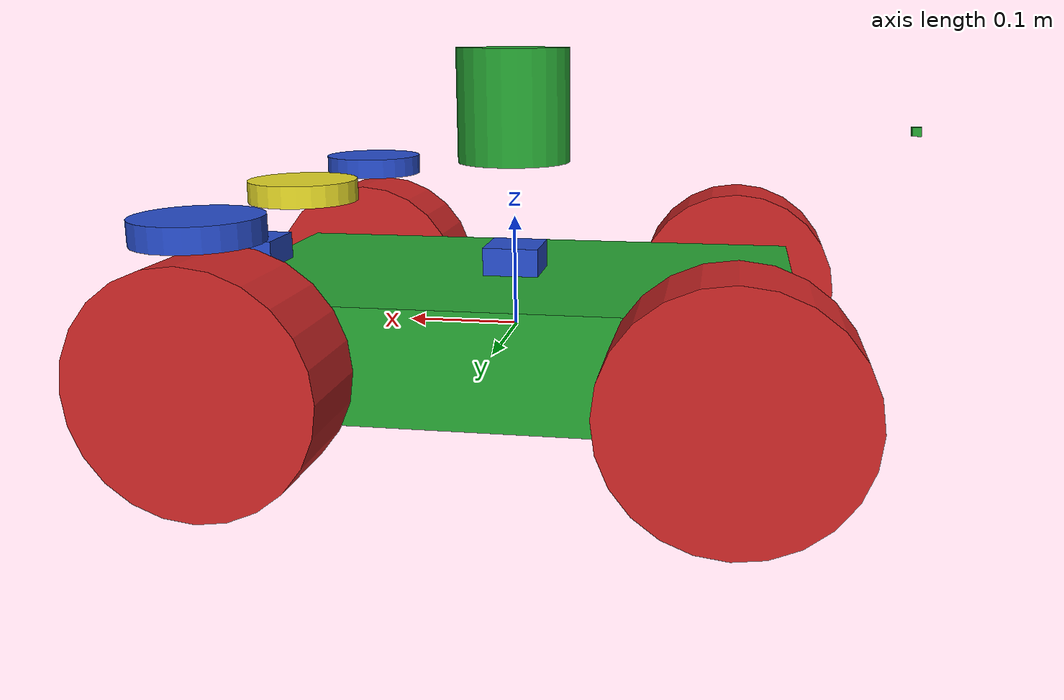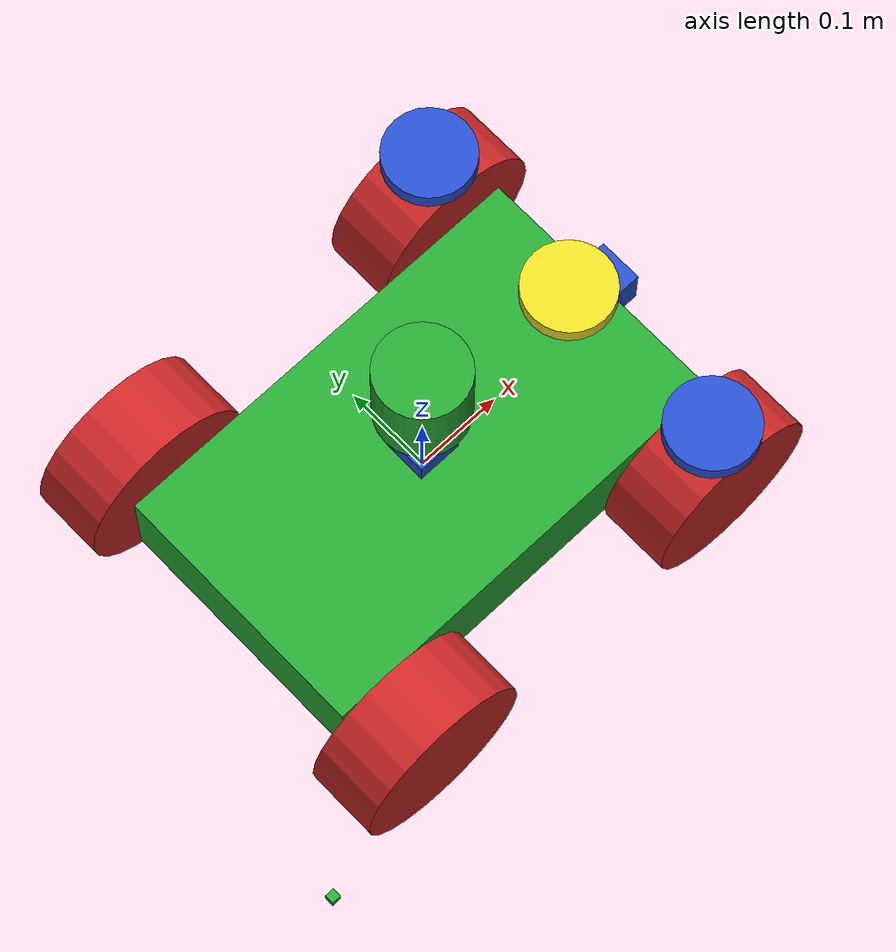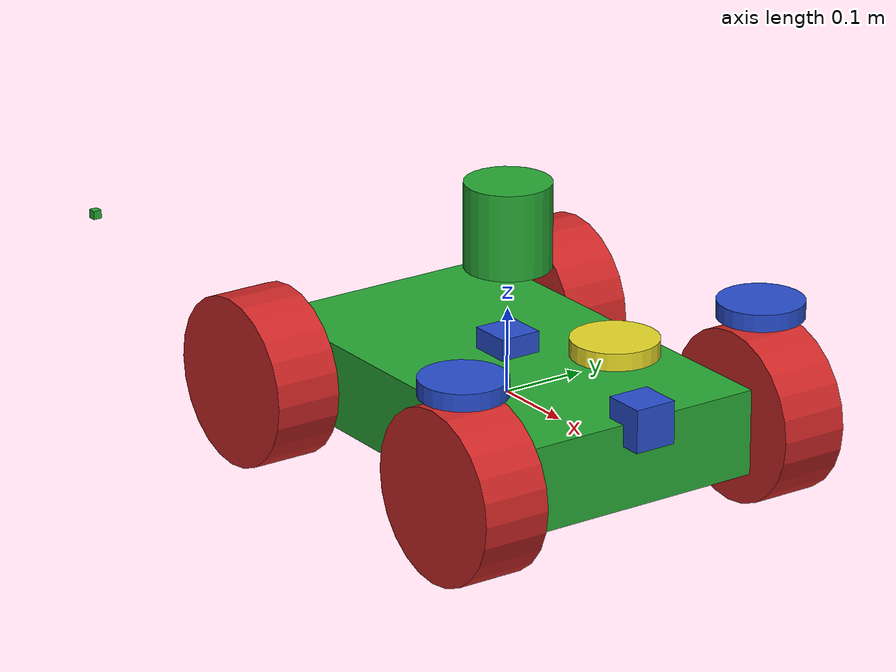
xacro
<?xml version="1.0"?>
<robot name="steer_bot" xmlns:xacro="http://wiki.ros.org/xacro">
  <!-- Include xacro for inertials, materials and wheels -->
  <xacro:include filename="$(find picar_description)/urdf/wheel.xacro"/>

  <xacro:property name="robot_namespace" value="/picar_bot"/>

  <!-- Gazebo plugins -->
  <gazebo>
    <!-- Load ros_control plugin using the steer_bot_hardware_gazebo
         implementation of the hardware_interface::RobotHW -->
    <plugin name="gazebo_ros_control" filename="libgazebo_ros_control.so">
      <robotNamespace>${robot_namespace}</robotNamespace>
      <robotSimType>gazebo_ros_control/DefaultRobotHWSim</robotSimType>
      <legacyModeNS>false</legacyModeNS>
    </plugin>
  </gazebo>

  <!-- Math constants -->
  <xacro:property name="deg_to_rad" value="0.01745329251994329577"/>

  <!-- Robot base dimensions -->
  <xacro:property name="base_length" value="0.5" />
  <xacro:property name="base_width" value="0.3" />
  <xacro:property name="base_height" value="0.1" />
  <xacro:property name="base_mass" value="5" />

  <!-- Wheel link dimensions -->
  <xacro:property name="wheel_radius" value="0.1" />
  <xacro:property name="wheel_thickness" value="0.08" />
  <xacro:property name="wheel_mass" value="1" />

  <!-- Steering link dimensions -->
  <xacro:property name="steer_radius" value="0.05" />
  <xacro:property name="steer_thickness" value="0.02" />
  <xacro:property name="steer_mass" value="1" />

  <!-- Axle positions -->
  <xacro:property name="axle_offset" value="0.05" />
  <xacro:property name="steer_offset" value="0.02" />

  <!-- Base link -->
  <link name="base_link"/>

  <link name="chassis">
    <visual>
      <origin xyz="0 0 0" rpy="0 0 0"/>
      <geometry>
        <box size="${base_length} ${base_width} ${base_height}"/>
      </geometry>
      <material name="green" />
    </visual>
    <collision>
      <origin xyz="0 0 0" rpy="0 0 0"/>
      <geometry>
        <box size="${base_length} ${base_width} ${base_height}"/>
      </geometry>
    </collision>
    <xacro:solid_cuboid_inertial
        rpy="0 0 0" xyz="0 0 0"
        mass="${base_mass}"
        x="${base_length}" y="${base_width}" z="${base_height}" />
  </link>

  <joint name="joint_chassis_to_base_link" type="fixed" >
    <parent link="base_link" />
    <child link="chassis" />
  </joint>

  <!-- Front steer and rear wheel joints required for ackermann_steering_controller -->
  <xacro:front_steer
      name="front"
      parent="base"
      steer_radius="${steer_radius}"
      steer_thickness="${steer_thickness}"
      steer_mass="${steer_mass}"
      base_length="${base_length}"
      base_width="${base_width}"
      axle_offset="${axle_offset}"
      steer_height="${wheel_radius+steer_offset}">
  </xacro:front_steer>

  <xacro:rear_wheel
      name="rear"
      parent="base"
      wheel_radius="${wheel_radius/4}"
      wheel_thickness="${wheel_thickness/2}"
      wheel_mass="${wheel_mass/32}">
    <origin xyz="${-base_length/2+axle_offset} 0 0" rpy="${-90 * deg_to_rad} 0 0"/>
  </xacro:rear_wheel>

  <!-- Steerable front wheels -->
  <xacro:front_wheel_lr
      name="front_right"
      parent="base"
      reflect="-1"
      wheel_radius="${wheel_radius}"
      wheel_thickness="${wheel_thickness}"
      wheel_mass="${wheel_mass}"
      steer_radius="${steer_radius}"
      steer_thickness="${steer_thickness}"
      steer_mass="${steer_mass}"
      base_length="${base_length}"
      base_width="${base_width}"
      axle_offset="${axle_offset}"
      steer_height="${wheel_radius+steer_offset}">
  </xacro:front_wheel_lr>
  <xacro:front_wheel_lr
      name="front_left"
      parent="base"
      reflect="1"
      wheel_radius="${wheel_radius}"
      wheel_thickness="${wheel_thickness}"
      wheel_mass="${wheel_mass}"
      steer_radius="${steer_radius}"
      steer_thickness="${steer_thickness}"
      steer_mass="${steer_mass}"
      base_length="${base_length}"
      base_width="${base_width}"
      axle_offset="${axle_offset}"
      steer_height="${wheel_radius+steer_offset}">
  </xacro:front_wheel_lr>

  <!-- Rear wheels -->
  <xacro:rear_wheel_lr
      name="rear_right"
      parent="base"
      wheel_radius="${wheel_radius}"
      wheel_thickness="${wheel_thickness}"
      wheel_mass="${wheel_mass}">
    <origin xyz="${-base_length/2+axle_offset} ${-base_width/2-axle_offset} 0" rpy="${-90 * deg_to_rad} 0 0"/>
  </xacro:rear_wheel_lr>
  <xacro:rear_wheel_lr
      name="rear_left"
      parent="base"
      wheel_radius="${wheel_radius}"
      wheel_thickness="${wheel_thickness}"
      wheel_mass="${wheel_mass}">
    <origin xyz="${-base_length/2+axle_offset} ${+base_width/2+axle_offset} 0" rpy="${-90 * deg_to_rad} 0 0"/>
  </xacro:rear_wheel_lr>

  <!-- Colour -->
  <gazebo reference="chassis">
    <material>Gazebo/Green</material>
  </gazebo>

  <!-- Lidar -->
  <xacro:property name="lidar_radius" value="0.05" />
  <xacro:property name="lidar_height" value="0.1" />
  <!-- Make the lidar rise above the other rings -->
  <xacro:property name="lidar_zpos" value="${base_height*2}" />

  <link name="lidar_cylinder">
    <visual>
      <material name="green" />
      <geometry>
        <cylinder length="${lidar_height}" radius="${lidar_radius}" />
      </geometry>
    </visual>
    <collision>
      <geometry>
        <cylinder length="${lidar_height}" radius="${lidar_radius}" />
      </geometry>
    </collision>
    <xacro:solid_cylinder_inertial
        rpy="0 0 0" xyz="0 0 ${lidar_zpos}"
        mass="${lidar_radius}"
        radius="${lidar_radius}" length="${lidar_height}" />
  </link>

  <joint name="joint_lidar_cylinder" type="fixed">
    <origin xyz="0 0 ${lidar_zpos}" />
    <parent link="base_link" />
    <child link="lidar_cylinder" />
  </joint>

  <!-- Lidar (YD X4 Lidar) -->
  <gazebo reference="lidar_cylinder">
    <material>Gazebo/Green</material>
  </gazebo>
  <gazebo reference="lidar_cylinder">
    <sensor type="ray" name="lds_lfcd_sensor">
      <pose>0 0 0.0 0 0 0</pose>
      <visualize>false</visualize>
      <update_rate>5</update_rate>
      <ray>
        <scan>
          <horizontal>
            <samples>720</samples>
            <resolution>0.5</resolution>
            <min_angle>0.0</min_angle>
            <max_angle>6.28319</max_angle>
          </horizontal>
        </scan>
        <range>
          <min>0.12</min>
          <max>10</max>
          <resolution>0.015</resolution>
        </range>
        <noise>
          <type>gaussian</type>
          <mean>0.0</mean>
          <stddev>0.02</stddev>
        </noise>
      </ray>
      <plugin name="gazebo_ros_lds_lfcd_controller" filename="libgazebo_ros_laser.so">
        <topicName>scan</topicName>
        <frameName>lidar_cylinder</frameName>
      </plugin>
    </sensor>
  </gazebo>

  <!-- Camera -->
  <xacro:property name="camera_xsize" value="0.05" />
  <xacro:property name="camera_ysize" value="0.05" />
  <xacro:property name="camera_zsize" value="0.05" />
  <xacro:property name="camera_mass"  value="0.1" />
  <xacro:property name="camera_xpos"  value="${base_length/2}" />
  <xacro:property name="camera_ypos"  value="0.00" />
  <xacro:property name="camera_zpos"  value="${base_height/2}" />

  <!-- Camera -->
  <link name="camera_box" >
    <visual>
      <material name="blue" />
      <geometry>
        <box size="${camera_xsize} ${camera_ysize} ${camera_zsize}" />
      </geometry>
    </visual>
    <collision>
      <geometry>
        <box size="${camera_xsize} ${camera_ysize} ${camera_zsize}" />
      </geometry>
    </collision>
    <xacro:solid_cuboid_inertial
        rpy="0 0 0" xyz="${camera_xsize} ${camera_ysize} ${camera_zsize}"
        mass="${camera_mass}"
        x="${camera_xpos}" y="${camera_ypos}" z="${camera_zpos}" />
  </link>

  <joint name="joint_camera_box" type="fixed">
    <origin xyz="${camera_xpos} ${camera_ypos} ${camera_zpos}" rpy="0 0 0" />
    <parent link="chassis" />
    <child link="camera_box" />
  </joint>

  <gazebo reference="camera_box">
    <sensor type="camera" name="camera1">
      <update_rate>30.0</update_rate>
      <camera name="front">
        <horizontal_fov>1.3962634</horizontal_fov>
        <image>
          <width>800</width>
          <height>800</height>
          <format>R8G8B8</format>
        </image>
        <clip>
          <near>0.02</near>
          <far>300</far>
        </clip>
      </camera>
      <plugin name="camera_controller" filename="libgazebo_ros_camera.so">
        <alwaysOn>true</alwaysOn>
        <updateRate>0.0</updateRate>
        <cameraName>/camera1</cameraName>
        <imageTopicName>image_raw</imageTopicName>
        <cameraInfoTopicName>camera_info</cameraInfoTopicName>
        <frameName>camera</frameName>
        <hackBaseline>0.07</hackBaseline>
        <distortionK1>0.0</distortionK1>
        <distortionK2>0.0</distortionK2>
        <distortionK3>0.0</distortionK3>
        <distortionT1>0.0</distortionT1>
        <distortionT2>0.0</distortionT2>
      </plugin>
    </sensor>
  </gazebo>

  <!-- IMU -->

  <!-- Imu -->
  <xacro:property name="imu_xsize" value="0.05" />
  <xacro:property name="imu_ysize" value="0.05" />
  <xacro:property name="imu_zsize" value="0.05" />
  <xacro:property name="imu_mass"  value="0.1" />
  <xacro:property name="imu_xpos"  value="0" />
  <xacro:property name="imu_ypos"  value="0.00" />
  <xacro:property name="imu_zpos"  value="${base_height/2}" />

  <!-- Imu -->
  <link name="imu_box" >
    <visual>
      <material name="blue" />
      <geometry>
        <box size="${imu_xsize} ${imu_ysize} ${imu_zsize}" />
      </geometry>
    </visual>
    <collision>
      <geometry>
        <box size="${imu_xsize} ${imu_ysize} ${imu_zsize}" />
      </geometry>
    </collision>
    <xacro:solid_cuboid_inertial
        rpy="0 0 0" xyz="${imu_xsize} ${imu_ysize} ${imu_zsize}"
        mass="${imu_mass}"
        x="${imu_xpos}" y="${imu_ypos}" z="${imu_zpos}" />
  </link>

  <joint name="joint_imu_box" type="fixed">
    <origin xyz="${imu_xpos} ${imu_ypos} ${imu_zpos}" rpy="0 0 0" />
    <parent link="chassis" />
    <child link="imu_box" />
  </joint>

  <gazebo reference="imu_box">
    <gravity>true</gravity>
    <sensor name="imu_sensor" type="imu">
      <always_on>true</always_on>
      <update_rate>100</update_rate>
      <visualize>true</visualize>
      <topic>__default_topic__</topic>
      <plugin filename="libgazebo_ros_imu_sensor.so" name="imu_plugin" >
        <topicName>imu</topicName>
        <bodyName>imu_link</bodyName>
        <updateRateHZ>10.0</updateRateHZ>
        <gaussianNoise>2.89e-08</gaussianNoise>
        <xyzOffset>0 0 0</xyzOffset>
        <rpyOffset>0 0 0</rpyOffset>
        <frameName>imu_link</frameName>
        <inertialOrientationAsReference>false</inertialOrientationAsReference>
      </plugin>
      <pose>0 0 0 0 0 0</pose>
    </sensor>
  </gazebo>

  <!-- GPS Sensor -->

<!--...................................GPS MODULE...................................................-->
<link name="base_gps_front">

        <inertial>
      <mass value="1e-5" />
      <origin xyz="0 0 0" rpy="0 0 0"/>
      <inertia ixx="1e-6" ixy="0" ixz="0" iyy="1e-6" iyz="0" izz="1e-6" />
    </inertial>

    <collision name='collision'>

      <geometry>
        <box size="0.01 0.01 0.01"/>
      </geometry>
	<origin xyz="0 0 0" rpy="0 0 0"/>
   	<material name="green"/>
    </collision>

    <visual>

      <geometry>
        <box size="0.01 0.01 0.01"/>
      </geometry>
	<origin xyz="0 0 0" rpy="0 0 0"/>
	<material name="green"/>

    </visual>
</link>

<gazebo reference="base_gps_front">
    <material>Gazebo/Green</material>
    <turnGravityOff>false</turnGravityOff>
</gazebo>

<joint name="gps_front_joint" type="fixed">
    <axis xyz="0 1 0" />
    <origin rpy="0 0 0" xyz="-0.395 -0.295 0.155" />
    <parent link="base_link"/>
    <child link="base_gps_front"/>
</joint>

<!--..................................GPS SENSOR PLUGIN.......................................-->

    <!-- GPS Sensor -->
  <gazebo>
    <plugin name="novatel_gps_sim" filename="libhector_gazebo_ros_gps.so">
      <alwaysOn>1</alwaysOn>
      <updateRate>50</updateRate>
      <bodyName>base_gps_front</bodyName>
      <topicName>fix</topicName>
      <velocityTopicName>/vel</velocityTopicName>
      <drift>5.0 5.0 5.0</drift>
      <gaussianNoise>0.1 0.1 0.1</gaussianNoise>
      <velocityDrift>0 0 0</velocityDrift>
      <velocityGaussianNoise>0.1 0.1 0.1</velocityGaussianNoise>
     <!--for blacklister-->
    </plugin>
  </gazebo>
</robot>

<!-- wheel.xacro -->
<robot name="wheel" xmlns:xacro="http://wiki.ros.org/xacro">
  <!-- Include xacro for materials and inertials -->
  <xacro:include filename="$(find picar_description)/urdf/materials.xacro"/>
  <xacro:include filename="$(find picar_description)/urdf/inertials.xacro"/>

  <!-- Properties -->
  <xacro:property name="steer_effort" value="10.0"/>
  <xacro:property name="steer_velocity" value="5.0"/>

  <!-- Bicycle model front steering link (required for steer_drive_controller) -->
  <xacro:macro name="front_steer"
    params="
      name
      parent
      steer_radius
      steer_thickness
      steer_mass
      base_length
      base_width
      axle_offset
      steer_height">
    <link name="${name}_steer_link">
      <visual>
        <origin xyz="0 0 0" rpy="0 0 0"/>
        <geometry>
          <cylinder radius="${steer_radius}" length="${steer_thickness}"/>
        </geometry>
        <material name="yellow" />
      </visual>
      <collision>
        <origin xyz="0 0 0" rpy="0 0 0"/>
        <geometry>
          <cylinder radius="${steer_radius}" length="${steer_thickness}"/>
        </geometry>
      </collision>
      <xacro:solid_cylinder_inertial
          rpy="0 0 0" xyz="0 0 0"
          mass="${steer_mass}"
          radius="${steer_radius}" length="${steer_thickness}" />
    </link>

    <joint name="${name}_steer_joint" type="revolute">
      <parent link="${parent}_link"/>
      <child link="${name}_steer_link"/>
      <origin xyz="${base_length/2-axle_offset} 0 ${steer_height}" rpy="0 0 0"/>
      <axis xyz="0 0 1"/>
      <limit effort="${steer_effort}"
             lower="${-180.0 * deg_to_rad}" upper="${180.0 * deg_to_rad}"
             velocity="${steer_velocity}"/>
    </joint>

    <transmission name="${name}_steer_joint_trans">
      <type>transmission_interface/SimpleTransmission</type>
      <actuator name="${name}_steer_joint_motor">
        <mechanicalReduction>1</mechanicalReduction>
        <hardwareInterface>hardware_interface/PositionJointInterface</hardwareInterface>
      </actuator>
      <joint name="${name}_steer_joint">
        <hardwareInterface>hardware_interface/PositionJointInterface</hardwareInterface>
      </joint>
    </transmission>

    <gazebo reference="${name}_steer_link">
      <material>Gazebo/Yellow</material>
    </gazebo>
  </xacro:macro>

  <!-- Car steering model front (steerable) wheel links (left/right) -->
  <xacro:macro name="front_wheel_lr"
    params="
      name
      parent
      reflect
      wheel_radius
      wheel_thickness
      wheel_mass
      steer_radius
      steer_thickness
      steer_mass
      base_length
      base_width
      axle_offset
      steer_height">
    <link name="${name}_steer_link">
      <visual>
        <origin xyz="0 0 0" rpy="0 0 0"/>
        <geometry>
          <cylinder radius="${steer_radius}" length="${steer_thickness}"/>
        </geometry>
        <material name="blue" />
      </visual>
      <collision>
        <origin xyz="0 0 0" rpy="0 0 0"/>
        <geometry>
          <cylinder radius="${steer_radius}" length="${steer_thickness}"/>
        </geometry>
      </collision>
      <xacro:solid_cylinder_inertial
          rpy="0 0 0" xyz="0 0 0"
          mass="${steer_mass}"
          radius="${steer_radius}" length="${steer_thickness}" />
    </link>

    <joint name="${name}_steer_joint" type="revolute">
      <parent link="${parent}_link"/>
      <child link="${name}_steer_link"/>
      <origin xyz="${base_length/2-axle_offset} ${reflect*(base_width/2+axle_offset)} ${steer_height}" rpy="0 0 0"/>
      <axis xyz="0 0 1"/>
      <limit effort="${steer_effort}"
             lower="${-180.0 * deg_to_rad}" upper="${180.0 * deg_to_rad}"
             velocity="${steer_velocity}"/>
    </joint>

    <link name="${name}_wheel_link">
      <visual>
        <origin xyz="0 0 0" rpy="0 0 0"/>
        <geometry>
          <cylinder radius="${wheel_radius}" length="${wheel_thickness}"/>
        </geometry>
        <material name="red" />
      </visual>
      <collision>
        <origin xyz="0 0 0" rpy="0 0 0"/>
        <geometry>
          <cylinder radius="${wheel_radius}" length="${wheel_thickness}"/>
        </geometry>
      </collision>
      <xacro:solid_cylinder_inertial
          rpy="0 0 0" xyz="0 0 0"
          mass="${wheel_mass}"
          radius="${wheel_radius}" length="${wheel_thickness}" />
    </link>

    <joint name="${name}_wheel_joint" type="continuous">
      <parent link="${name}_steer_link"/>
      <child link="${name}_wheel_link"/>
      <origin xyz="0 0 ${-steer_height}" rpy="${-90 * deg_to_rad} 0 0"/>
      <axis xyz="0 0 1"/>
    </joint>

    <transmission name="${name}_steer_joint_trans">
      <type>transmission_interface/SimpleTransmission</type>
      <actuator name="${name}_steer_joint_motor">
        <mechanicalReduction>1</mechanicalReduction>
        <hardwareInterface>hardware_interface/PositionJointInterface</hardwareInterface>
      </actuator>
      <joint name="${name}_steer_joint">
        <hardwareInterface>hardware_interface/PositionJointInterface</hardwareInterface>
      </joint>
    </transmission>

    <transmission name="${name}_wheel_joint_trans">
      <type>transmission_interface/SimpleTransmission</type>
      <actuator name="${name}_wheel_joint_motor">
        <mechanicalReduction>1</mechanicalReduction>
        <hardwareInterface>hardware_interface/VelocityJointInterface</hardwareInterface>
      </actuator>
      <joint name="${name}_wheel_joint">
        <hardwareInterface>hardware_interface/VelocityJointInterface</hardwareInterface>
      </joint>
    </transmission>

    <gazebo reference="${name}_steer_link">
      <material>Gazebo/Blue</material>
    </gazebo>

    <gazebo reference="${name}_wheel_link">
      <material>Gazebo/Red</material>
    </gazebo>
  </xacro:macro>

  <!-- Bicycle model rear wheel link (required for steer_drive_controller) -->
  <xacro:macro name="rear_wheel"
    params="
      name
      parent
      wheel_radius
      wheel_thickness
      wheel_mass
      *origin">
    <link name="${name}_wheel_link">
      <visual>
        <origin xyz="0 0 0" rpy="0 0 0"/>
        <geometry>
          <cylinder radius="${wheel_radius}" length="${wheel_thickness}"/>
        </geometry>
        <material name="yellow" />
      </visual>
      <collision>
        <origin xyz="0 0 0" rpy="0 0 0"/>
        <geometry>
          <cylinder radius="${wheel_radius}" length="${wheel_thickness}"/>
        </geometry>
      </collision>
      <xacro:solid_cylinder_inertial
          rpy="0 0 0" xyz="0 0 0"
          mass="${wheel_mass}"
          radius="${wheel_radius}" length="${wheel_thickness}" />
    </link>

    <joint name="${name}_wheel_joint" type="continuous">
      <parent link="${parent}_link"/>
      <child link="${name}_wheel_link"/>
      <xacro:insert_block name="origin"/>
      <axis xyz="0 0 1"/>
    </joint>

    <transmission name="${name}_wheel_joint_trans">
      <type>transmission_interface/SimpleTransmission</type>
      <actuator name="${name}_wheel_joint_motor">
        <mechanicalReduction>1</mechanicalReduction>
        <hardwareInterface>hardware_interface/VelocityJointInterface</hardwareInterface>
      </actuator>
      <joint name="${name}_wheel_joint">
        <hardwareInterface>hardware_interface/VelocityJointInterface</hardwareInterface>
      </joint>
    </transmission>

    <gazebo reference="${name}_wheel_link">
      <material>Gazebo/Yellow</material>
    </gazebo>
  </xacro:macro>

  <!-- Bicycle model front wheel link (passive - no transmission) -->
  <xacro:macro name="front_wheel"
    params="
      name
      parent
      wheel_radius
      wheel_thickness
      wheel_mass
      *origin">
    <link name="${name}_wheel_link">
      <visual>
        <origin xyz="0 0 0" rpy="0 0 0"/>
        <geometry>
          <cylinder radius="${wheel_radius}" length="${wheel_thickness}"/>
        </geometry>
        <material name="yellow" />
      </visual>
      <collision>
        <origin xyz="0 0 0" rpy="0 0 0"/>
        <geometry>
          <cylinder radius="${wheel_radius}" length="${wheel_thickness}"/>
        </geometry>
      </collision>
      <xacro:solid_cylinder_inertial
          rpy="0 0 0" xyz="0 0 0"
          mass="${wheel_mass}"
          radius="${wheel_radius}" length="${wheel_thickness}" />
    </link>

    <joint name="${name}_wheel_joint" type="continuous">
      <parent link="${parent}_link"/>
      <child link="${name}_wheel_link"/>
      <xacro:insert_block name="origin"/>
      <axis xyz="0 0 1"/>
    </joint>

    <gazebo reference="${name}_wheel_link">
      <material>Gazebo/Yellow</material>
    </gazebo>

    <gazebo reference="${name}_wheel_joint">
      <provideFeedback>true</provideFeedback>
    </gazebo>
  </xacro:macro>

  <!-- Car steering model rear wheel links (left/right) -->
  <xacro:macro name="rear_wheel_lr"
    params="
      name
      parent
      wheel_radius
      wheel_thickness
      wheel_mass
      *origin">
    <link name="${name}_wheel_link">
      <visual>
        <origin xyz="0 0 0" rpy="0 0 0"/>
        <geometry>
          <cylinder radius="${wheel_radius}" length="${wheel_thickness}"/>
        </geometry>
        <material name="red" />
      </visual>
      <collision>
        <origin xyz="0 0 0" rpy="0 0 0"/>
        <geometry>
          <cylinder radius="${wheel_radius}" length="${wheel_thickness}"/>
        </geometry>
      </collision>
      <xacro:solid_cylinder_inertial
          rpy="0 0 0" xyz="0 0 0"
          mass="${wheel_mass}"
          radius="${wheel_radius}" length="${wheel_thickness}" />
    </link>

    <joint name="${name}_wheel_joint" type="continuous">
      <parent link="${parent}_link"/>
      <child link="${name}_wheel_link"/>
      <xacro:insert_block name="origin"/>
      <axis xyz="0 0 1"/>
    </joint>

    <transmission name="${name}_wheel_joint_trans">
      <type>transmission_interface/SimpleTransmission</type>
      <actuator name="${name}_wheel_joint_motor">
        <mechanicalReduction>1</mechanicalReduction>
        <hardwareInterface>hardware_interface/VelocityJointInterface</hardwareInterface>
      </actuator>
      <joint name="${name}_wheel_joint">
        <hardwareInterface>hardware_interface/VelocityJointInterface</hardwareInterface>
      </joint>
    </transmission>

    <gazebo reference="${name}_wheel_link">
      <material>Gazebo/Red</material>
    </gazebo>
  </xacro:macro>
</robot>
